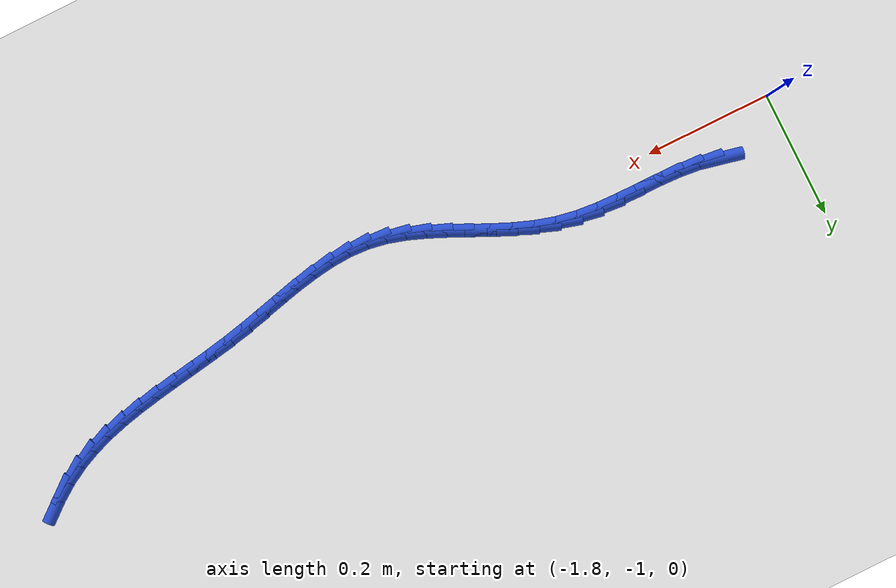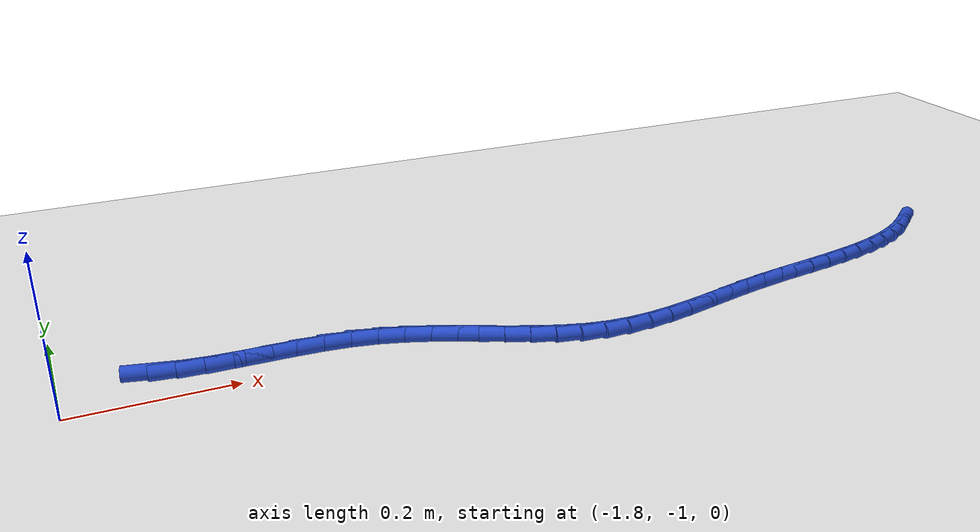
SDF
<sdf version="1.6">
 <world name="default">
  <model name="ground_plane">
   <static>1</static>
   <link name="link">
    <collision name="collision">
     <geometry><plane><normal>0 0 1</normal><size>100 100</size></plane></geometry>
     <surface><friction><ode><mu>100</mu><mu2>50</mu2></ode></friction></surface>
    </collision>
    <visual name="visual">
     <cast_shadows>0</cast_shadows>
     <geometry><plane><normal>0 0 1</normal><size>100 100</size></plane></geometry>
     <material>
      <script><uri>file://media/materials/scripts/gazebo.material</uri><name>Gazebo/WhiteGlow</name></script>
     </material>
    </visual>
   </link>
  </model>
  <model name="line">
   <link name="link_149">
    <pose>-1.6884653248781463 -0.9470308648218158 0.01 0 1.57 -0.22209863400827345</pose>
    <collision name="collision">
     <geometry><cylinder><radius>0.01</radius><length>0.08</length></cylinder></geometry>
    </collision>
    <visual name="visual">
     <material>
      <script><name>Gazebo/Blue</name><uri>file://media/materials/scripts/gazebo.material</uri></script>
     </material>
     <geometry><cylinder><radius>0.01</radius><length>0.08</length></cylinder></geometry>
    </visual>
   </link>
   <link name="link_150">
    <pose>-1.6592132919448659 -0.9536366769871558 0.01 0 1.57 -0.11076868505870457</pose>
    <collision name="collision">
     <geometry><cylinder><radius>0.01</radius><length>0.08</length></cylinder></geometry>
    </collision>
    <visual name="visual">
     <material>
      <script><name>Gazebo/Blue</name><uri>file://media/materials/scripts/gazebo.material</uri></script>
     </material>
     <geometry><cylinder><radius>0.01</radius><length>0.08</length></cylinder></geometry>
    </visual>
   </link>
   <link name="link_151">
    <pose>-1.627982509856163 -0.9571102880104545 0.01 0 1.57 -0.04176252684806839</pose>
    <collision name="collision">
     <geometry><cylinder><radius>0.01</radius><length>0.08</length></cylinder></geometry>
    </collision>
    <visual name="visual">
     <material>
      <script><name>Gazebo/Blue</name><uri>file://media/materials/scripts/gazebo.material</uri></script>
     </material>
     <geometry><cylinder><radius>0.01</radius><length>0.08</length></cylinder></geometry>
    </visual>
   </link>
   <link name="link_152">
    <pose>-1.595253267619221 -0.9584779390712389 0.01 0 1.57 -0.008531773627489234</pose>
    <collision name="collision">
     <geometry><cylinder><radius>0.01</radius><length>0.08</length></cylinder></geometry>
    </collision>
    <visual name="visual">
     <material>
      <script><name>Gazebo/Blue</name><uri>file://media/materials/scripts/gazebo.material</uri></script>
     </material>
     <geometry><cylinder><radius>0.01</radius><length>0.08</length></cylinder></geometry>
    </visual>
   </link>
   <link name="link_153">
    <pose>-1.5615058542412248 -0.9587658713490355 0.01 0 1.57 -0.006838238269204487</pose>
    <collision name="collision">
     <geometry><cylinder><radius>0.01</radius><length>0.08</length></cylinder></geometry>
    </collision>
    <visual name="visual">
     <material>
      <script><name>Gazebo/Blue</name><uri>file://media/materials/scripts/gazebo.material</uri></script>
     </material>
     <geometry><cylinder><radius>0.01</radius><length>0.08</length></cylinder></geometry>
    </visual>
   </link>
   <link name="link_154">
    <pose>-1.527220558729358 -0.9590003260233714 0.01 0 1.57 -0.035137445644771496</pose>
    <collision name="collision">
     <geometry><cylinder><radius>0.01</radius><length>0.08</length></cylinder></geometry>
    </collision>
    <visual name="visual">
     <material>
      <script><name>Gazebo/Blue</name><uri>file://media/materials/scripts/gazebo.material</uri></script>
     </material>
     <geometry><cylinder><radius>0.01</radius><length>0.08</length></cylinder></geometry>
    </visual>
   </link>
   <link name="link_155">
    <pose>-1.4928776700908037 -0.960207544273773 0.01 0 1.57 -0.09424254198406991</pose>
    <collision name="collision">
     <geometry><cylinder><radius>0.01</radius><length>0.08</length></cylinder></geometry>
    </collision>
    <visual name="visual">
     <material>
      <script><name>Gazebo/Blue</name><uri>file://media/materials/scripts/gazebo.material</uri></script>
     </material>
     <geometry><cylinder><radius>0.01</radius><length>0.08</length></cylinder></geometry>
    </visual>
   </link>
   <link name="link_156">
    <pose>-1.458957477332746 -0.9634137672797676 0.01 0 1.57 -0.1856124157090775</pose>
    <collision name="collision">
     <geometry><cylinder><radius>0.01</radius><length>0.08</length></cylinder></geometry>
    </collision>
    <visual name="visual">
     <material>
      <script><name>Gazebo/Blue</name><uri>file://media/materials/scripts/gazebo.material</uri></script>
     </material>
     <geometry><cylinder><radius>0.01</radius><length>0.08</length></cylinder></geometry>
    </visual>
   </link>
   <link name="link_157">
    <pose>-1.4259295655137691 -0.9696155430257436 0.01 0 1.57 -0.2847515933381547</pose>
    <collision name="collision">
     <geometry><cylinder><radius>0.01</radius><length>0.08</length></cylinder></geometry>
    </collision>
    <visual name="visual">
     <material>
      <script><name>Gazebo/Blue</name><uri>file://media/materials/scripts/gazebo.material</uri></script>
     </material>
     <geometry><cylinder><radius>0.01</radius><length>0.08</length></cylinder></geometry>
    </visual>
   </link>
   <link name="link_158">
    <pose>-1.393961884712165 -0.9789726716131846 0.01 0 1.57 -0.3612119827313081</pose>
    <collision name="collision">
     <geometry><cylinder><radius>0.01</radius><length>0.08</length></cylinder></geometry>
    </collision>
    <visual name="visual">
     <material>
      <script><name>Gazebo/Blue</name><uri>file://media/materials/scripts/gazebo.material</uri></script>
     </material>
     <geometry><cylinder><radius>0.01</radius><length>0.08</length></cylinder></geometry>
    </visual>
   </link>
   <link name="link_159">
    <pose>-1.362886296711946 -0.9907126303458768 0.01 0 1.57 -0.41282050320923197</pose>
    <collision name="collision">
     <geometry><cylinder><radius>0.01</radius><length>0.08</length></cylinder></geometry>
    </collision>
    <visual name="visual">
     <material>
      <script><name>Gazebo/Blue</name><uri>file://media/materials/scripts/gazebo.material</uri></script>
     </material>
     <geometry><cylinder><radius>0.01</radius><length>0.08</length></cylinder></geometry>
    </visual>
   </link>
   <link name="link_160">
    <pose>-1.3325170434077125 -1.0040140182272637 0.01 0 1.57 -0.4397048822551932</pose>
    <collision name="collision">
     <geometry><cylinder><radius>0.01</radius><length>0.08</length></cylinder></geometry>
    </collision>
    <visual name="visual">
     <material>
      <script><name>Gazebo/Blue</name><uri>file://media/materials/scripts/gazebo.material</uri></script>
     </material>
     <geometry><cylinder><radius>0.01</radius><length>0.08</length></cylinder></geometry>
    </visual>
   </link>
   <link name="link_161">
    <pose>-1.302668366694071 -1.0180554342607913 0.01 0 1.57 -0.4418149261290688</pose>
    <collision name="collision">
     <geometry><cylinder><radius>0.01</radius><length>0.08</length></cylinder></geometry>
    </collision>
    <visual name="visual">
     <material>
      <script><name>Gazebo/Blue</name><uri>file://media/materials/scripts/gazebo.material</uri></script>
     </material>
     <geometry><cylinder><radius>0.01</radius><length>0.08</length></cylinder></geometry>
    </visual>
   </link>
   <link name="link_162">
    <pose>-1.273154508465622 -1.032015477449904 0.01 0 1.57 -0.41840199327678834</pose>
    <collision name="collision">
     <geometry><cylinder><radius>0.01</radius><length>0.08</length></cylinder></geometry>
    </collision>
    <visual name="visual">
     <material>
      <script><name>Gazebo/Blue</name><uri>file://media/materials/scripts/gazebo.material</uri></script>
     </material>
     <geometry><cylinder><radius>0.01</radius><length>0.08</length></cylinder></geometry>
    </visual>
   </link>
   <link name="link_163">
    <pose>-1.2437897106169697 -1.0450727467980467 0.01 0 1.57 -0.3679092218380224</pose>
    <collision name="collision">
     <geometry><cylinder><radius>0.01</radius><length>0.08</length></cylinder></geometry>
    </collision>
    <visual name="visual">
     <material>
      <script><name>Gazebo/Blue</name><uri>file://media/materials/scripts/gazebo.material</uri></script>
     </material>
     <geometry><cylinder><radius>0.01</radius><length>0.08</length></cylinder></geometry>
    </visual>
   </link>
   <link name="link_164">
    <pose>-1.214388215042716 -1.056405841308664 0.01 0 1.57 -0.28836734040475187</pose>
    <collision name="collision">
     <geometry><cylinder><radius>0.01</radius><length>0.08</length></cylinder></geometry>
    </collision>
    <visual name="visual">
     <material>
      <script><name>Gazebo/Blue</name><uri>file://media/materials/scripts/gazebo.material</uri></script>
     </material>
     <geometry><cylinder><radius>0.01</radius><length>0.08</length></cylinder></geometry>
    </visual>
   </link>
   <link name="link_165">
    <pose>-1.1847642636374638 -1.0651933599852013 0.01 0 1.57 -0.17861392818712857</pose>
    <collision name="collision">
     <geometry><cylinder><radius>0.01</radius><length>0.08</length></cylinder></geometry>
    </collision>
    <visual name="visual">
     <material>
      <script><name>Gazebo/Blue</name><uri>file://media/materials/scripts/gazebo.material</uri></script>
     </material>
     <geometry><cylinder><radius>0.01</radius><length>0.08</length></cylinder></geometry>
    </visual>
   </link>
   <link name="link_166">
    <pose>-1.154732312695544 -1.0706152659575459 0.01 0 1.57 -0.053466136668109135</pose>
    <collision name="collision">
     <geometry><cylinder><radius>0.01</radius><length>0.08</length></cylinder></geometry>
    </collision>
    <visual name="visual">
     <material>
      <script><name>Gazebo/Blue</name><uri>file://media/materials/scripts/gazebo.material</uri></script>
     </material>
     <geometry><cylinder><radius>0.01</radius><length>0.08</length></cylinder></geometry>
    </visual>
   </link>
   <link name="link_167">
    <pose>-1.124169587999765 -1.0722508956223096 0.01 0 1.57 0.05206303490547499</pose>
    <collision name="collision">
     <geometry><cylinder><radius>0.01</radius><length>0.08</length></cylinder></geometry>
    </collision>
    <visual name="visual">
     <material>
      <script><name>Gazebo/Blue</name><uri>file://media/materials/scripts/gazebo.material</uri></script>
     </material>
     <geometry><cylinder><radius>0.01</radius><length>0.08</length></cylinder></geometry>
    </visual>
   </link>
   <link name="link_168">
    <pose>-1.0931030082441668 -1.0706320122384163 0.01 0 1.57 0.13254503375258317</pose>
    <collision name="collision">
     <geometry><cylinder><radius>0.01</radius><length>0.08</length></cylinder></geometry>
    </collision>
    <visual name="visual">
     <material>
      <script><name>Gazebo/Blue</name><uri>file://media/materials/scripts/gazebo.material</uri></script>
     </material>
     <geometry><cylinder><radius>0.01</radius><length>0.08</length></cylinder></geometry>
    </visual>
   </link>
   <link name="link_169">
    <pose>-1.06158133110771 -1.0664293304400725 0.01 0 1.57 0.1892561237311564</pose>
    <collision name="collision">
     <geometry><cylinder><radius>0.01</radius><length>0.08</length></cylinder></geometry>
    </collision>
    <visual name="visual">
     <material>
      <script><name>Gazebo/Blue</name><uri>file://media/materials/scripts/gazebo.material</uri></script>
     </material>
     <geometry><cylinder><radius>0.01</radius><length>0.08</length></cylinder></geometry>
    </visual>
   </link>
   <link name="link_170">
    <pose>-1.0296533142693576 -1.060313564861486 0.01 0 1.57 0.2240802490682886</pose>
    <collision name="collision">
     <geometry><cylinder><radius>0.01</radius><length>0.08</length></cylinder></geometry>
    </collision>
    <visual name="visual">
     <material>
      <script><name>Gazebo/Blue</name><uri>file://media/materials/scripts/gazebo.material</uri></script>
     </material>
     <geometry><cylinder><radius>0.01</radius><length>0.08</length></cylinder></geometry>
    </visual>
   </link>
   <link name="link_171">
    <pose>-0.9973677154080699 -1.0529554301368629 0.01 0 1.57 0.23865033900244864</pose>
    <collision name="collision">
     <geometry><cylinder><radius>0.01</radius><length>0.08</length></cylinder></geometry>
    </collision>
    <visual name="visual">
     <material>
      <script><name>Gazebo/Blue</name><uri>file://media/materials/scripts/gazebo.material</uri></script>
     </material>
     <geometry><cylinder><radius>0.01</radius><length>0.08</length></cylinder></geometry>
    </visual>
   </link>
   <link name="link_172">
    <pose>-0.9647732922028085 -1.0450256409004106 0.01 0 1.57 0.23398027115976427</pose>
    <collision name="collision">
     <geometry><cylinder><radius>0.01</radius><length>0.08</length></cylinder></geometry>
    </collision>
    <visual name="visual">
     <material>
      <script><name>Gazebo/Blue</name><uri>file://media/materials/scripts/gazebo.material</uri></script>
     </material>
     <geometry><cylinder><radius>0.01</radius><length>0.08</length></cylinder></geometry>
    </visual>
   </link>
   <link name="link_173">
    <pose>-0.931918802332534 -1.0371949117863355 0.01 0 1.57 0.21061487394895465</pose>
    <collision name="collision">
     <geometry><cylinder><radius>0.01</radius><length>0.08</length></cylinder></geometry>
    </collision>
    <visual name="visual">
     <material>
      <script><name>Gazebo/Blue</name><uri>file://media/materials/scripts/gazebo.material</uri></script>
     </material>
     <geometry><cylinder><radius>0.01</radius><length>0.08</length></cylinder></geometry>
    </visual>
   </link>
   <link name="link_174">
    <pose>-0.8988538421529477 -1.0301261081576616 0.01 0 1.57 0.180617829654887</pose>
    <collision name="collision">
     <geometry><cylinder><radius>0.01</radius><length>0.08</length></cylinder></geometry>
    </collision>
    <visual name="visual">
     <material>
      <script><name>Gazebo/Blue</name><uri>file://media/materials/scripts/gazebo.material</uri></script>
     </material>
     <geometry><cylinder><radius>0.01</radius><length>0.08</length></cylinder></geometry>
    </visual>
   </link>
   <link name="link_175">
    <pose>-0.8656723696817763 -1.0240669095263382 0.01 0 1.57 0.1619819276894302</pose>
    <collision name="collision">
     <geometry><cylinder><radius>0.01</radius><length>0.08</length></cylinder></geometry>
    </collision>
    <visual name="visual">
     <material>
      <script><name>Gazebo/Blue</name><uri>file://media/materials/scripts/gazebo.material</uri></script>
     </material>
     <geometry><cylinder><radius>0.01</radius><length>0.08</length></cylinder></geometry>
    </visual>
   </link>
   <link name="link_176">
    <pose>-0.8325338798785165 -1.0186516276966637 0.01 0 1.57 0.15621227497598944</pose>
    <collision name="collision">
     <geometry><cylinder><radius>0.01</radius><length>0.08</length></cylinder></geometry>
    </collision>
    <visual name="visual">
     <material>
      <script><name>Gazebo/Blue</name><uri>file://media/materials/scripts/gazebo.material</uri></script>
     </material>
     <geometry><cylinder><radius>0.01</radius><length>0.08</length></cylinder></geometry>
    </visual>
   </link>
   <link name="link_177">
    <pose>-0.799603144657023 -1.0134651868556621 0.01 0 1.57 0.16354369852370512</pose>
    <collision name="collision">
     <geometry><cylinder><radius>0.01</radius><length>0.08</length></cylinder></geometry>
    </collision>
    <visual name="visual">
     <material>
      <script><name>Gazebo/Blue</name><uri>file://media/materials/scripts/gazebo.material</uri></script>
     </material>
     <geometry><cylinder><radius>0.01</radius><length>0.08</length></cylinder></geometry>
    </visual>
   </link>
   <link name="link_178">
    <pose>-0.7670449359311494 -1.008092511190356 0.01 0 1.57 0.18444470796867046</pose>
    <collision name="collision">
     <geometry><cylinder><radius>0.01</radius><length>0.08</length></cylinder></geometry>
    </collision>
    <visual name="visual">
     <material>
      <script><name>Gazebo/Blue</name><uri>file://media/materials/scripts/gazebo.material</uri></script>
     </material>
     <geometry><cylinder><radius>0.01</radius><length>0.08</length></cylinder></geometry>
    </visual>
   </link>
   <link name="link_179">
    <pose>-0.7350240256147512 -1.002118524887769 0.01 0 1.57 0.21960075058940776</pose>
    <collision name="collision">
     <geometry><cylinder><radius>0.01</radius><length>0.08</length></cylinder></geometry>
    </collision>
    <visual name="visual">
     <material>
      <script><name>Gazebo/Blue</name><uri>file://media/materials/scripts/gazebo.material</uri></script>
     </material>
     <geometry><cylinder><radius>0.01</radius><length>0.08</length></cylinder></geometry>
    </visual>
   </link>
   <link name="link_180">
    <pose>-0.7037051856216823 -0.9951281521349238 0.01 0 1.57 0.26981688218293604</pose>
    <collision name="collision">
     <geometry><cylinder><radius>0.01</radius><length>0.08</length></cylinder></geometry>
    </collision>
    <visual name="visual">
     <material>
      <script><name>Gazebo/Blue</name><uri>file://media/materials/scripts/gazebo.material</uri></script>
     </material>
     <geometry><cylinder><radius>0.01</radius><length>0.08</length></cylinder></geometry>
    </visual>
   </link>
   <link name="link_181">
    <pose>-0.673253187865797 -0.9867063171188439 0.01 0 1.57 0.33580364690179515</pose>
    <collision name="collision">
     <geometry><cylinder><radius>0.01</radius><length>0.08</length></cylinder></geometry>
    </collision>
    <visual name="visual">
     <material>
      <script><name>Gazebo/Blue</name><uri>file://media/materials/scripts/gazebo.material</uri></script>
     </material>
     <geometry><cylinder><radius>0.01</radius><length>0.08</length></cylinder></geometry>
    </visual>
   </link>
   <link name="link_182">
    <pose>-0.6438328042609488 -0.9764379440265518 0.01 0 1.57 0.41780968826730414</pose>
    <collision name="collision">
     <geometry><cylinder><radius>0.01</radius><length>0.08</length></cylinder></geometry>
    </collision>
    <visual name="visual">
     <material>
      <script><name>Gazebo/Blue</name><uri>file://media/materials/scripts/gazebo.material</uri></script>
     </material>
     <geometry><cylinder><radius>0.01</radius><length>0.08</length></cylinder></geometry>
    </visual>
   </link>
   <link name="link_183">
    <pose>-0.6156088067209937 -0.9639079570450716 0.01 0 1.57 0.5143749176004736</pose>
    <collision name="collision">
     <geometry><cylinder><radius>0.01</radius><length>0.08</length></cylinder></geometry>
    </collision>
    <visual name="visual">
     <material>
      <script><name>Gazebo/Blue</name><uri>file://media/materials/scripts/gazebo.material</uri></script>
     </material>
     <geometry><cylinder><radius>0.01</radius><length>0.08</length></cylinder></geometry>
    </visual>
   </link>
   <link name="link_184">
    <pose>-0.588736139943939 -0.9487217671219755 0.01 0 1.57 0.608163820313519</pose>
    <collision name="collision">
     <geometry><cylinder><radius>0.01</radius><length>0.08</length></cylinder></geometry>
    </collision>
    <visual name="visual">
     <material>
      <script><name>Gazebo/Blue</name><uri>file://media/materials/scripts/gazebo.material</uri></script>
     </material>
     <geometry><cylinder><radius>0.01</radius><length>0.08</length></cylinder></geometry>
    </visual>
   </link>
   <link name="link_185">
    <pose>-0.5631621983957362 -0.930917464406424 0.01 0 1.57 0.6834200673189893</pose>
    <collision name="collision">
     <geometry><cylinder><radius>0.01</radius><length>0.08</length></cylinder></geometry>
    </collision>
    <visual name="visual">
     <material>
      <script><name>Gazebo/Blue</name><uri>file://media/materials/scripts/gazebo.material</uri></script>
     </material>
     <geometry><cylinder><radius>0.01</radius><length>0.08</length></cylinder></geometry>
    </visual>
   </link>
  </model>
 </world>
</sdf>
